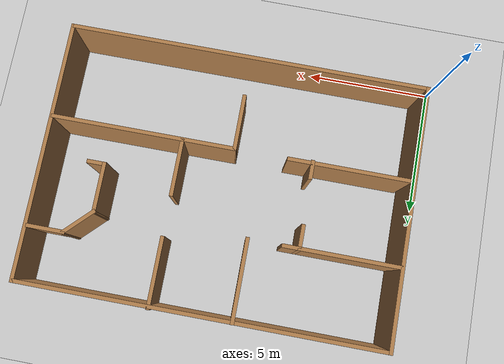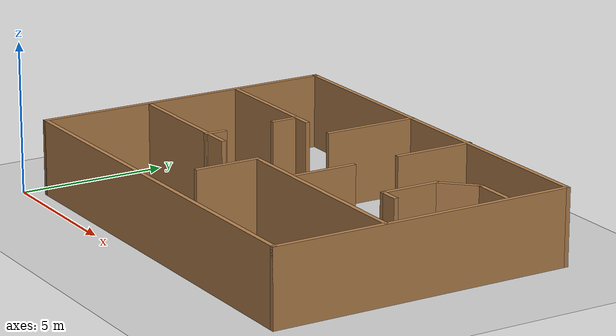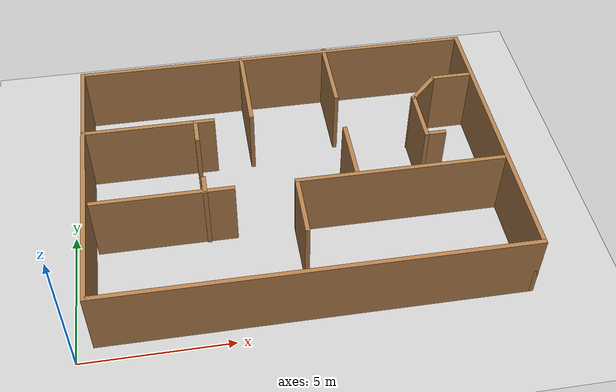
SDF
<sdf version="1.6">
 <world name="default">
  <light name="sun" type="directional">
   <pose>0 0 10 0 -0 0</pose>
   <diffuse>0.8 0.8 0.8 1</diffuse>
   <specular>0.1 0.1 0.1 1</specular>
   <attenuation>
    <range>1000</range>
    <constant>0.9</constant>
    <linear>0.01</linear>
    <quadratic>0.001</quadratic>
   </attenuation>
   <direction>-0.5 0.5 -1</direction>
  </light>
  <model name="ground_plane">
   <static>1</static>
   <link name="link">
    <collision name="collision">
     <geometry><plane><normal>0 0 1</normal><size>100 100</size></plane></geometry>
     <surface><friction><ode><mu>100</mu><mu2>50</mu2></ode></friction></surface>
    </collision>
    <visual name="visual">
     <cast_shadows>0</cast_shadows>
     <geometry><plane><normal>0 0 1</normal><size>100 100</size></plane></geometry>
     <material>
      <script><uri>file://media/materials/scripts/gazebo.material</uri><name>Gazebo/Grey</name></script>
     </material>
    </visual>
   </link>
  </model>
  <gravity>0 0 -9.8</gravity>
  <magnetic_field>6e-06 2.3e-05 -4.2e-05</magnetic_field>
  <atmosphere type="adiabatic"/>
  <physics name="default_physics" default="0" type="ode">
   <max_step_size>0.001</max_step_size>
   <real_time_factor>1</real_time_factor>
   <real_time_update_rate>1000</real_time_update_rate>
  </physics>
  <scene><ambient>0.4 0.4 0.4 1</ambient><background>0.7 0.7 0.7 1</background><shadows>1</shadows></scene>
  <spherical_coordinates>
   <surface_model>EARTH_WGS84</surface_model>
   <latitude_deg>0</latitude_deg>
   <longitude_deg>0</longitude_deg>
   <elevation>0</elevation>
   <heading_deg>0</heading_deg>
  </spherical_coordinates>
  <model name="Untitled">
   <pose>7.6403 5.65409 0 0 -0 0</pose>
   <link name="Wall_10">
    <collision name="Wall_10_Collision">
     <geometry><box><size>14.25 0.15 2.5</size></box></geometry>
     <pose>0 0 1.25 0 -0 0</pose>
    </collision>
    <visual name="Wall_10_Visual">
     <pose>0 0 1.25 0 -0 0</pose>
     <geometry><box><size>14.25 0.15 2.5</size></box></geometry>
     <material>
      <script><uri>file://media/materials/scripts/gazebo.material</uri><name>Gazebo/Wood</name></script>
      <ambient>1 1 1 1</ambient>
     </material>
    </visual>
    <pose>0.0133 5.02681 0 0 -0 3.14159</pose>
   </link>
   <link name="Wall_12">
    <collision name="Wall_12_Collision">
     <geometry><box><size>4.75 0.15 2.5</size></box></geometry>
     <pose>0 0 1.25 0 -0 0</pose>
    </collision>
    <visual name="Wall_12_Visual">
     <pose>0 0 1.25 0 -0 0</pose>
     <geometry><box><size>4.75 0.15 2.5</size></box></geometry>
     <material>
      <script><uri>file://media/materials/scripts/gazebo.material</uri><name>Gazebo/Wood</name></script>
      <ambient>1 1 1 1</ambient>
     </material>
    </visual>
    <pose>-4.5133 -1.35724 0 0 -0 0</pose>
   </link>
   <link name="Wall_14">
    <collision name="Wall_14_Collision">
     <geometry><box><size>7.25 0.15 2.5</size></box></geometry>
     <pose>0 0 1.25 0 -0 0</pose>
    </collision>
    <visual name="Wall_14_Visual">
     <pose>0 0 1.25 0 -0 0</pose>
     <geometry><box><size>7.25 0.15 2.5</size></box></geometry>
     <material>
      <script><uri>file://media/materials/scripts/gazebo.material</uri><name>Gazebo/Wood</name></script>
      <ambient>1 1 1 1</ambient>
     </material>
    </visual>
    <pose>3.45595 -1.35724 0 0 -0 0</pose>
   </link>
   <link name="Wall_16">
    <collision name="Wall_16_Collision">
     <geometry><box><size>2.25 0.15 2.5</size></box></geometry>
     <pose>0 0 1.25 0 -0 0</pose>
    </collision>
    <visual name="Wall_16_Visual">
     <pose>0 0 1.25 0 -0 0</pose>
     <geometry><box><size>2.25 0.15 2.5</size></box></geometry>
     <material>
      <script><uri>file://media/materials/scripts/gazebo.material</uri><name>Gazebo/Wood</name></script>
      <ambient>1 1 1 1</ambient>
     </material>
    </visual>
    <pose>1.92757 -0.254038 0 0 -0 1.5708</pose>
   </link>
   <link name="Wall_19">
    <collision name="Wall_19_Collision">
     <geometry><box><size>2.75 0.15 2.5</size></box></geometry>
     <pose>0 0 1.25 0 -0 0</pose>
    </collision>
    <visual name="Wall_19_Visual">
     <pose>0 0 1.25 0 -0 0</pose>
     <geometry><box><size>2.75 0.15 2.5</size></box></geometry>
     <material>
      <script><uri>file://media/materials/scripts/gazebo.material</uri><name>Gazebo/Wood</name></script>
      <ambient>1 1 1 1</ambient>
     </material>
    </visual>
    <pose>1.92757 3.77319 0 0 -0 1.5708</pose>
   </link>
   <link name="Wall_35">
    <collision name="Wall_35_Collision">
     <geometry><box><size>2 0.15 2.5</size></box></geometry>
     <pose>0 0 1.25 0 -0 0</pose>
    </collision>
    <visual name="Wall_35_Visual">
     <pose>0 0 1.25 0 -0 0</pose>
     <geometry><box><size>2 0.15 2.5</size></box></geometry>
     <material>
      <script><uri>file://media/materials/scripts/gazebo.material</uri><name>Gazebo/Wood</name></script>
      <ambient>1 1 1 1</ambient>
     </material>
    </visual>
    <pose>4.6582 1.05737 0 0 -0 1.5708</pose>
   </link>
   <link name="Wall_37">
    <collision name="Wall_37_Collision">
     <geometry><box><size>1.5 0.15 2.5</size></box></geometry>
     <pose>0 0 1.25 0 -0 0</pose>
    </collision>
    <visual name="Wall_37_Visual">
     <pose>0 0 1.25 0 -0 0</pose>
     <geometry><box><size>1.5 0.15 2.5</size></box></geometry>
     <material>
      <script><uri>file://media/materials/scripts/gazebo.material</uri><name>Gazebo/Wood</name></script>
      <ambient>1 1 1 1</ambient>
     </material>
    </visual>
    <pose>6.2878 2.93697 0 0 -0 0</pose>
   </link>
   <link name="Wall_39">
    <collision name="Wall_39_Collision">
     <geometry><box><size>0.75 0.15 2.5</size></box></geometry>
     <pose>0 0 1.25 0 -0 0</pose>
    </collision>
    <visual name="Wall_39_Visual">
     <pose>0 0 1.25 0 -0 0</pose>
     <geometry><box><size>0.75 0.15 2.5</size></box></geometry>
     <material>
      <script><uri>file://media/materials/scripts/gazebo.material</uri><name>Gazebo/Wood</name></script>
      <ambient>1 1 1 1</ambient>
     </material>
    </visual>
    <pose>4.95821 0.132373 0 0 -0 0</pose>
   </link>
   <link name="Wall_41">
    <collision name="Wall_41_Collision">
     <geometry><box><size>2.25 0.15 2.5</size></box></geometry>
     <pose>0 0 1.25 0 -0 0</pose>
    </collision>
    <visual name="Wall_41_Visual">
     <pose>0 0 1.25 0 -0 0</pose>
     <geometry><box><size>2.25 0.15 2.5</size></box></geometry>
     <material>
      <script><uri>file://media/materials/scripts/gazebo.material</uri><name>Gazebo/Wood</name></script>
      <ambient>1 1 1 1</ambient>
     </material>
    </visual>
    <pose>-0.094048 -2.40724 0 0 0 -1.5708</pose>
   </link>
   <link name="Wall_43">
    <collision name="Wall_43_Collision">
     <geometry><box><size>1.5 0.15 2.5</size></box></geometry>
     <pose>0 0 1.25 0 -0 0</pose>
    </collision>
    <visual name="Wall_43_Visual">
     <pose>0 0 1.25 0 -0 0</pose>
     <geometry><box><size>1.5 0.15 2.5</size></box></geometry>
     <material>
      <script><uri>file://media/materials/scripts/gazebo.material</uri><name>Gazebo/Wood</name></script>
      <ambient>1 1 1 1</ambient>
     </material>
    </visual>
    <pose>5.1355 2.45967 0 0 -0 0.785398</pose>
   </link>
   <link name="Wall_49">
    <collision name="Wall_49_Collision">
     <geometry><box><size>0.75 0.15 2.5</size></box></geometry>
     <pose>0 0 1.25 0 -0 0</pose>
    </collision>
    <visual name="Wall_49_Visual">
     <pose>0 0 1.25 0 -0 0</pose>
     <geometry><box><size>0.75 0.15 2.5</size></box></geometry>
     <material>
      <script><uri>file://media/materials/scripts/gazebo.material</uri><name>Gazebo/Wood</name></script>
      <ambient>1 1 1 1</ambient>
     </material>
    </visual>
    <pose>-3.12038 -1.09832 0 0 -0 1.5708</pose>
   </link>
   <link name="Wall_51">
    <collision name="Wall_51_Collision">
     <geometry><box><size>1 0.15 2.5</size></box></geometry>
     <pose>0 0 1.25 0 -0 0</pose>
    </collision>
    <visual name="Wall_51_Visual">
     <pose>0 0 1.25 0 -0 0</pose>
     <geometry><box><size>1 0.15 2.5</size></box></geometry>
     <material>
      <script><uri>file://media/materials/scripts/gazebo.material</uri><name>Gazebo/Wood</name></script>
      <ambient>1 1 1 1</ambient>
     </material>
    </visual>
    <pose>-3.16664 1.50165 0 0 -0 1.5708</pose>
   </link>
   <link name="Wall_53">
    <collision name="Wall_53_Collision">
     <geometry><box><size>4 0.15 2.5</size></box></geometry>
     <pose>0 0 1.25 0 -0 0</pose>
    </collision>
    <visual name="Wall_53_Visual">
     <pose>0 0 1.25 0 -0 0</pose>
     <geometry><box><size>4 0.15 2.5</size></box></geometry>
     <material>
      <script><uri>file://media/materials/scripts/gazebo.material</uri><name>Gazebo/Wood</name></script>
      <ambient>1 1 1 1</ambient>
     </material>
    </visual>
    <pose>-5.09164 1.92665 0 0 -0 3.14159</pose>
   </link>
   <link name="Wall_55">
    <collision name="Wall_55_Collision">
     <geometry><box><size>0.75 0.15 2.5</size></box></geometry>
     <pose>0 0 1.25 0 -0 0</pose>
    </collision>
    <visual name="Wall_55_Visual">
     <pose>0 0 1.25 0 -0 0</pose>
     <geometry><box><size>0.75 0.15 2.5</size></box></geometry>
     <material>
      <script><uri>file://media/materials/scripts/gazebo.material</uri><name>Gazebo/Wood</name></script>
      <ambient>1 1 1 1</ambient>
     </material>
    </visual>
    <pose>-2.86664 1.92665 0 0 -0 0</pose>
   </link>
   <link name="Wall_57">
    <collision name="Wall_57_Collision">
     <geometry><box><size>3.25 0.15 2.5</size></box></geometry>
     <pose>0 0 1.25 0 -0 0</pose>
    </collision>
    <visual name="Wall_57_Visual">
     <pose>0 0 1.25 0 -0 0</pose>
     <geometry><box><size>3.25 0.15 2.5</size></box></geometry>
     <material>
      <script><uri>file://media/materials/scripts/gazebo.material</uri><name>Gazebo/Wood</name></script>
      <ambient>1 1 1 1</ambient>
     </material>
    </visual>
    <pose>-1.20054 3.48248 0 0 -0 1.5708</pose>
   </link>
   <link name="Wall_7">
    <collision name="Wall_7_Collision">
     <geometry><box><size>10.25 0.15 2.5</size></box></geometry>
     <pose>0 0 1.25 0 -0 0</pose>
    </collision>
    <visual name="Wall_7_Visual">
     <pose>0 0 1.25 0 -0 0</pose>
     <geometry><box><size>10.25 0.15 2.5</size></box></geometry>
     <material>
      <script><uri>file://media/materials/scripts/gazebo.material</uri><name>Gazebo/Wood</name></script>
      <ambient>1 1 1 1</ambient>
     </material>
    </visual>
    <pose>-7.0367 -0.02319 0 0 0 -1.5708</pose>
   </link>
   <link name="Wall_8">
    <collision name="Wall_8_Collision">
     <geometry><box><size>14.25 0.15 2.5</size></box></geometry>
     <pose>0 0 1.25 0 -0 0</pose>
    </collision>
    <visual name="Wall_8_Visual">
     <pose>0 0 1.25 0 -0 0</pose>
     <geometry><box><size>14.25 0.15 2.5</size></box></geometry>
     <material>
      <script><uri>file://media/materials/scripts/gazebo.material</uri><name>Gazebo/Wood</name></script>
      <ambient>1 1 1 1</ambient>
     </material>
    </visual>
    <pose>0.0133 -5.07319 0 0 -0 0</pose>
   </link>
   <link name="Wall_9">
    <collision name="Wall_9_Collision">
     <geometry><box><size>10.25 0.15 2.5</size></box></geometry>
     <pose>0 0 1.25 0 -0 0</pose>
    </collision>
    <visual name="Wall_9_Visual">
     <pose>0 0 1.25 0 -0 0</pose>
     <geometry><box><size>10.25 0.15 2.5</size></box></geometry>
     <material>
      <script><uri>file://media/materials/scripts/gazebo.material</uri><name>Gazebo/Wood</name></script>
      <ambient>1 1 1 1</ambient>
     </material>
    </visual>
    <pose>7.0633 -0.02319 0 0 -0 1.5708</pose>
   </link>
   <static>1</static>
  </model>
 </world>
</sdf>
